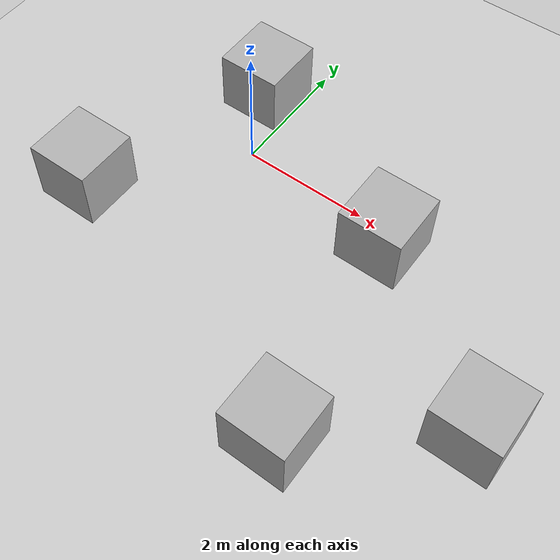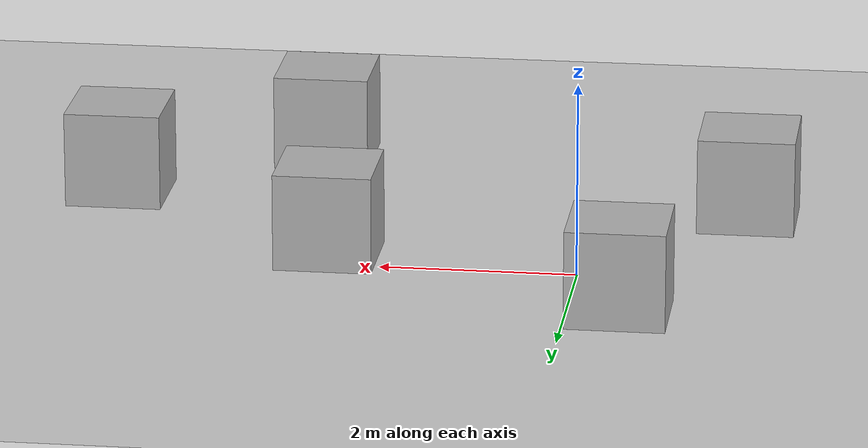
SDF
<sdf version='1.10'>
  <world name='empty'>
    <physics name='1ms' type='ignored'>
      <max_step_size>0.001</max_step_size>
      <real_time_factor>1</real_time_factor>
      <real_time_update_rate>1000</real_time_update_rate>
    </physics>
    <plugin name='gz::sim::systems::Physics' filename='gz-sim-physics-system'/>
    <plugin name='gz::sim::systems::UserCommands' filename='gz-sim-user-commands-system'/>
    <plugin name='gz::sim::systems::SceneBroadcaster' filename='gz-sim-scene-broadcaster-system'/>
    <plugin name='gz::sim::systems::Contact' filename='gz-sim-contact-system'/>
    <plugin filename="gz-sim-physics-system" name="gz::sim::systems::Physics"/>
    <plugin filename="gz-sim-user-commands-system" name="gz::sim::systems::UserCommands"/>
    <plugin filename="gz-sim-scene-broadcaster-system" name="gz::sim::systems::SceneBroadcaster"/>
    <plugin filename="gz-sim-sensors-system" name="gz::sim::systems::Sensors"/>
    <plugin filename="gz-sim-contact-system" name="gz::sim::systems::Contact"/>
    <gravity>0 0 -9.8000000000000007</gravity>
    <magnetic_field>5.5644999999999998e-06 2.2875799999999999e-05 -4.2388400000000002e-05</magnetic_field>
    <atmosphere type='adiabatic'/>
    <scene>
      <ambient>0.400000006 0.400000006 0.400000006 1</ambient>
      <background>0.699999988 0.699999988 0.699999988 1</background>
      <shadows>true</shadows>
    </scene>
    <model name='ground_plane'>
      <static>true</static>
      <link name='link'>
        <collision name='collision'>
          <geometry>
            <plane>
              <normal>0 0 1</normal>
              <size>100 100</size>
            </plane>
          </geometry>
          <surface>
            <friction>
              <ode/>
            </friction>
            <bounce/>
            <contact/>
          </surface>
        </collision>
        <visual name='visual'>
          <geometry>
            <plane>
              <normal>0 0 1</normal>
              <size>100 100</size>
            </plane>
          </geometry>
          <material>
            <ambient>0.800000012 0.800000012 0.800000012 1</ambient>
            <diffuse>0.800000012 0.800000012 0.800000012 1</diffuse>
            <specular>0.800000012 0.800000012 0.800000012 1</specular>
          </material>
        </visual>
        <pose>0 0 0 0 0 0</pose>
        <inertial>
          <pose>0 0 0 0 0 0</pose>
          <mass>1</mass>
          <inertia>
            <ixx>1</ixx>
            <ixy>0</ixy>
            <ixz>0</ixz>
            <iyy>1</iyy>
            <iyz>0</iyz>
            <izz>1</izz>
          </inertia>
        </inertial>
        <enable_wind>false</enable_wind>
      </link>
      <pose>0 0 0 0 0 0</pose>
      <self_collide>false</self_collide>
    </model>
    <model name='box'>
      <pose>3.0394289719834244 -3.5458379212138804 0.49999999990199806 3.7640163878534621e-21 -4.7055410790362791e-22 4.4223859219468029e-22</pose>
      <link name='box_link'>
        <inertial>
          <inertia>
            <ixx>0.16666</ixx>
            <ixy>0</ixy>
            <ixz>0</ixz>
            <iyy>0.16666</iyy>
            <iyz>0</iyz>
            <izz>0.16666</izz>
          </inertia>
          <mass>1</mass>
          <pose>0 0 0 0 0 0</pose>
        </inertial>
        <collision name='box_collision'>
          <geometry>
            <box>
              <size>1 1 1</size>
            </box>
          </geometry>
          <surface>
            <friction>
              <ode/>
            </friction>
            <bounce/>
            <contact/>
          </surface>
        </collision>
        <visual name='box_visual'>
          <geometry>
            <box>
              <size>1 1 1</size>
            </box>
          </geometry>
          <material>
            <ambient>0.300000012 0.300000012 0.300000012 1</ambient>
            <diffuse>0.699999988 0.699999988 0.699999988 1</diffuse>
            <specular>1 1 1 1</specular>
          </material>
        </visual>
        <pose>0 0 0 0 0 0</pose>
        <enable_wind>false</enable_wind>
      </link>
      <static>false</static>
      <self_collide>false</self_collide>
    </model>
    <model name='box_0'>
      <pose>2.5560801531157207 -0.27787489439586599 0.49999999990199806 6.2287739151293738e-22 9.3279666454713669e-22 -3.6315533669320137e-22</pose>
      <link name='box_link'>
        <inertial>
          <inertia>
            <ixx>0.16666</ixx>
            <ixy>0</ixy>
            <ixz>0</ixz>
            <iyy>0.16666</iyy>
            <iyz>0</iyz>
            <izz>0.16666</izz>
          </inertia>
          <mass>1</mass>
          <pose>0 0 0 0 0 0</pose>
        </inertial>
        <collision name='box_collision'>
          <geometry>
            <box>
              <size>1 1 1</size>
            </box>
          </geometry>
          <surface>
            <friction>
              <ode/>
            </friction>
            <bounce/>
            <contact/>
          </surface>
        </collision>
        <visual name='box_visual'>
          <geometry>
            <box>
              <size>1 1 1</size>
            </box>
          </geometry>
          <material>
            <ambient>0.300000012 0.300000012 0.300000012 1</ambient>
            <diffuse>0.699999988 0.699999988 0.699999988 1</diffuse>
            <specular>1 1 1 1</specular>
          </material>
        </visual>
        <pose>0 0 0 0 0 0</pose>
        <enable_wind>false</enable_wind>
      </link>
      <static>false</static>
      <self_collide>false</self_collide>
    </model>
    <model name='box_1'>
      <pose>5.0087690205878506 -2.025388506033643 0.49999999990199806 6.2287739151293738e-22 9.3279666454713669e-22 -3.6315533669320137e-22</pose>
      <link name='box_link'>
        <inertial>
          <inertia>
            <ixx>0.16666</ixx>
            <ixy>0</ixy>
            <ixz>0</ixz>
            <iyy>0.16666</iyy>
            <iyz>0</iyz>
            <izz>0.16666</izz>
          </inertia>
          <mass>1</mass>
          <pose>0 0 0 0 0 0</pose>
        </inertial>
        <collision name='box_collision'>
          <geometry>
            <box>
              <size>1 1 1</size>
            </box>
          </geometry>
          <surface>
            <friction>
              <ode/>
            </friction>
            <bounce/>
            <contact/>
          </surface>
        </collision>
        <visual name='box_visual'>
          <geometry>
            <box>
              <size>1 1 1</size>
            </box>
          </geometry>
          <material>
            <ambient>0.300000012 0.300000012 0.300000012 1</ambient>
            <diffuse>0.699999988 0.699999988 0.699999988 1</diffuse>
            <specular>1 1 1 1</specular>
          </material>
        </visual>
        <pose>0 0 0 0 0 0</pose>
        <enable_wind>false</enable_wind>
      </link>
      <static>false</static>
      <self_collide>false</self_collide>
    </model>
    <model name='box_2'>
      <pose>-1.5874501246143069 -1.9463084463577831 0.49999999990199806 1.7084716059672498e-21 1.7859134985792927e-21 -2.0193124312478175e-22</pose>
      <link name='box_link'>
        <inertial>
          <inertia>
            <ixx>0.16666</ixx>
            <ixy>0</ixy>
            <ixz>0</ixz>
            <iyy>0.16666</iyy>
            <iyz>0</iyz>
            <izz>0.16666</izz>
          </inertia>
          <mass>1</mass>
          <pose>0 0 0 0 0 0</pose>
        </inertial>
        <collision name='box_collision'>
          <geometry>
            <box>
              <size>1 1 1</size>
            </box>
          </geometry>
          <surface>
            <friction>
              <ode/>
            </friction>
            <bounce/>
            <contact/>
          </surface>
        </collision>
        <visual name='box_visual'>
          <geometry>
            <box>
              <size>1 1 1</size>
            </box>
          </geometry>
          <material>
            <ambient>0.300000012 0.300000012 0.300000012 1</ambient>
            <diffuse>0.699999988 0.699999988 0.699999988 1</diffuse>
            <specular>1 1 1 1</specular>
          </material>
        </visual>
        <pose>0 0 0 0 0 0</pose>
        <enable_wind>false</enable_wind>
      </link>
      <static>false</static>
      <self_collide>false</self_collide>
    </model>
    <model name='box_3'>
      <pose>-0.52657866226767425 1.1035783557801813 0.49999999990199806 6.2287739151293738e-22 9.3279666454713669e-22 -3.6315533669320137e-22</pose>
      <link name='box_link'>
        <inertial>
          <inertia>
            <ixx>0.16666</ixx>
            <ixy>0</ixy>
            <ixz>0</ixz>
            <iyy>0.16666</iyy>
            <iyz>0</iyz>
            <izz>0.16666</izz>
          </inertia>
          <mass>1</mass>
          <pose>0 0 0 0 0 0</pose>
        </inertial>
        <collision name='box_collision'>
          <geometry>
            <box>
              <size>1 1 1</size>
            </box>
          </geometry>
          <surface>
            <friction>
              <ode/>
            </friction>
            <bounce/>
            <contact/>
          </surface>
        </collision>
        <visual name='box_visual'>
          <geometry>
            <box>
              <size>1 1 1</size>
            </box>
          </geometry>
          <material>
            <ambient>0.300000012 0.300000012 0.300000012 1</ambient>
            <diffuse>0.699999988 0.699999988 0.699999988 1</diffuse>
            <specular>1 1 1 1</specular>
          </material>
        </visual>
        <pose>0 0 0 0 0 0</pose>
        <enable_wind>false</enable_wind>
      </link>
      <static>false</static>
      <self_collide>false</self_collide>
    </model>
    <light name='sun' type='directional'>
      <pose>0 0 10 0 0 0</pose>
      <cast_shadows>true</cast_shadows>
      <intensity>1</intensity>
      <direction>-0.5 0.10000000000000001 -0.90000000000000002</direction>
      <diffuse>0.800000012 0.800000012 0.800000012 1</diffuse>
      <specular>0.200000003 0.200000003 0.200000003 1</specular>
      <attenuation>
        <range>1000</range>
        <linear>0.01</linear>
        <constant>0.90000000000000002</constant>
        <quadratic>0.001</quadratic>
      </attenuation>
      <spot>
        <inner_angle>0</inner_angle>
        <outer_angle>0</outer_angle>
        <falloff>0</falloff>
      </spot>
    </light>
  </world>
</sdf>
